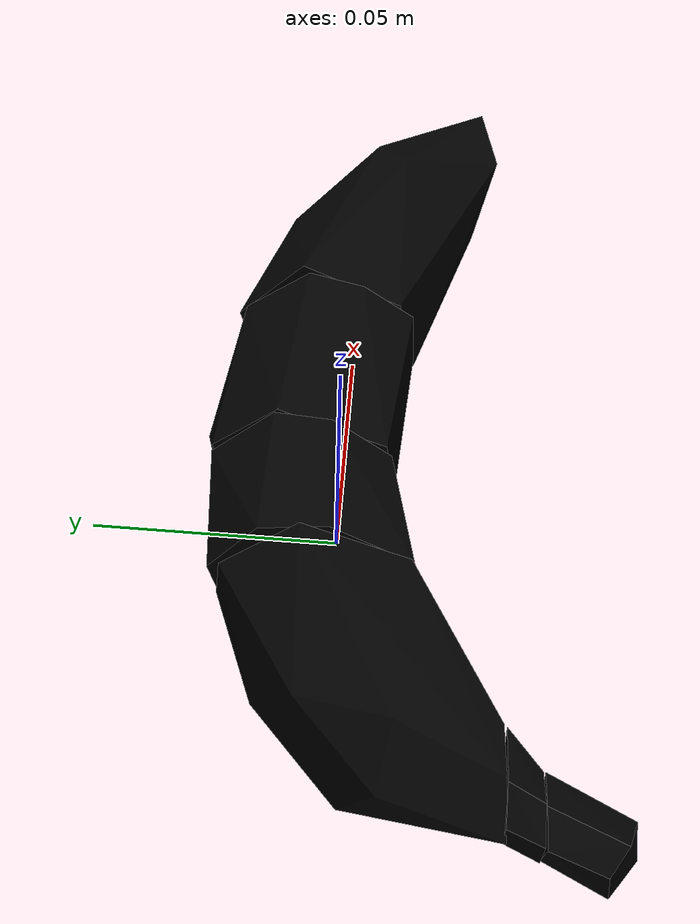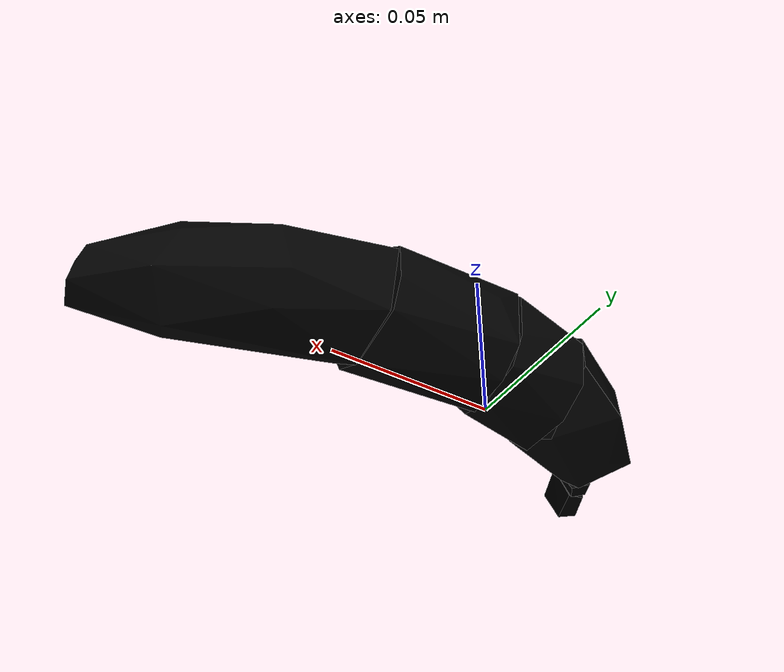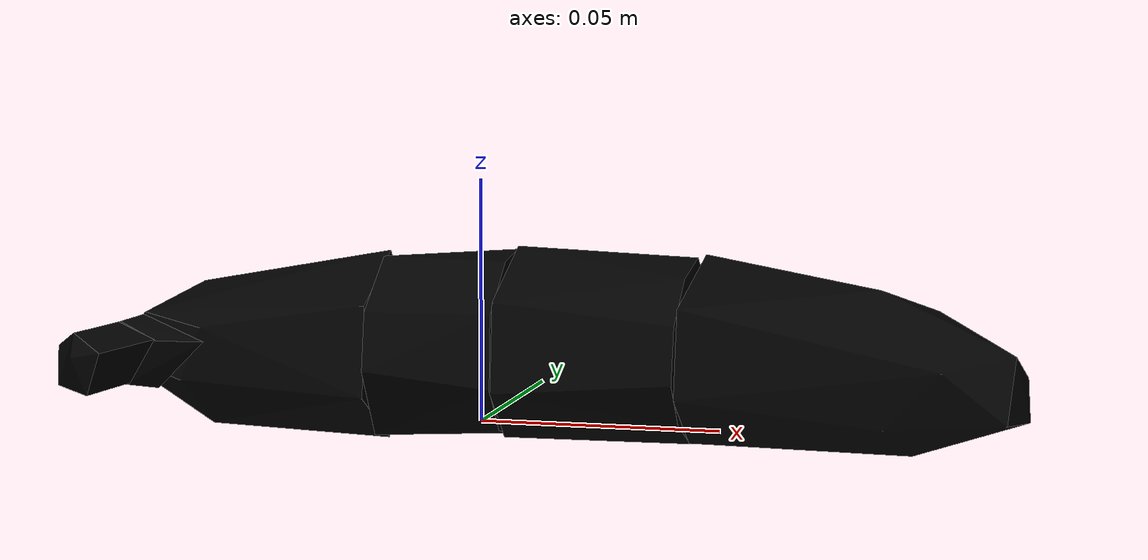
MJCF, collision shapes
<mujoco model="banana">
  <asset>
    <mesh name="banana_vis" file="meshes/banana_vis.obj" />
    <mesh name="banana_mesh1" file="meshes/banana_parts/banana1.obj" />
    <mesh name="banana_mesh2" file="meshes/banana_parts/banana2.obj" />
    <mesh name="banana_mesh3" file="meshes/banana_parts/banana3.obj" />
    <mesh name="banana_mesh4" file="meshes/banana_parts/banana4.obj" />
    <mesh name="banana_mesh5" file="meshes/banana_parts/banana5.obj" />
    <mesh name="banana_mesh6" file="meshes/banana_parts/banana6.obj" />
    <texture name="banana_tex" file="textures/banana.png" type="2d" />
    <material name="banana_mat" texture="banana_tex" texuniform="true" specular="0.2" shininess="0.3" reflectance="0.5" />
  </asset>

  <worldbody>
    <body>
      <body name="object">
        <geom name="body"
              mesh="banana_vis" type="mesh" material="banana_mat" contype="0" conaffinity="0" group="1" />
        <geom mesh="banana_mesh1" type="mesh" solimp="0.998 0.998 0.001" solref="0.001 1"
              density="1000" friction="1.0 0.3 0.1" material="banana_mat"
              group="0" condim="4" contype="1" conaffinity="1" rgba="0 0 0 0"/>
        <geom mesh="banana_mesh2" type="mesh" solimp="0.998 0.998 0.001" solref="0.001 1"
              density="1000" friction="1.0 0.3 0.1" material="banana_mat"
              group="0" condim="4" contype="1" conaffinity="1" rgba="0 0 0 0"/>
        <geom mesh="banana_mesh3" type="mesh" solimp="0.998 0.998 0.001" solref="0.001 1"
              density="1000" friction="1.0 0.3 0.1" material="banana_mat"
              group="0" condim="4" contype="1" conaffinity="1" rgba="0 0 0 0"/>
        <geom mesh="banana_mesh4" type="mesh" solimp="0.998 0.998 0.001" solref="0.001 1"
              density="1000" friction="1.0 0.3 0.1" material="banana_mat"
              group="0" condim="4" contype="1" conaffinity="1" rgba="0 0 0 0"/>
        <geom mesh="banana_mesh5" type="mesh" solimp="0.998 0.998 0.001" solref="0.001 1"
              density="1000" friction="1.0 0.3 0.1" material="banana_mat"
              group="0" condim="4" contype="1" conaffinity="1" rgba="0 0 0 0"/>
        <geom mesh="banana_mesh6" type="mesh" solimp="0.998 0.998 0.001" solref="0.001 1"
              density="1000" friction="1.0 0.3 0.1" material="banana_mat"
              group="0" condim="4" contype="1" conaffinity="1" rgba="0 0 0 0"/>
        <site name="grasp_0" pos="-0.0379 -0.0092 0.0201" quat="-0.0040 -0.0436 0.9949 0.0912" size="0.005" rgba="0 1 0 0.5"/>
        <site name="grasp_1" pos="0.0832 -0.0041 0.0205" quat="0.1220 -0.0868 0.9887 0.0107" size="0.005" rgba="0 1 0 0.5"/>
        <site name="grasp_2" pos="0.0197 0.0093 0.0110" quat="0.1220 -0.0868 0.9887 0.0107" size="0.005" rgba="0 1 0 0.5"/>
      </body>
      <site name="horizontal_radius_site" pos="0.05 0 0" size="0.005" rgba="0 0 0 0"/>
      <site name="top_site" pos="0 0 0.03" size="0.005" rgba="0 0 0 0"/>
      <site name="bottom_site" pos="0 0 -0.03" size="0.005" rgba="0 0 0 0"/>
    </body>
  </worldbody>
</mujoco>
